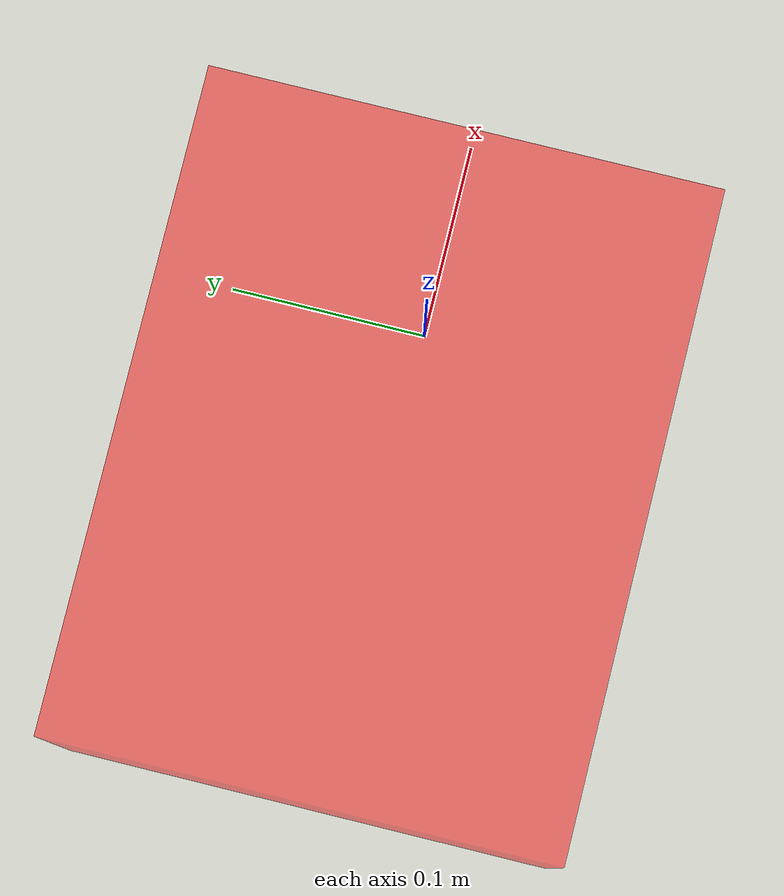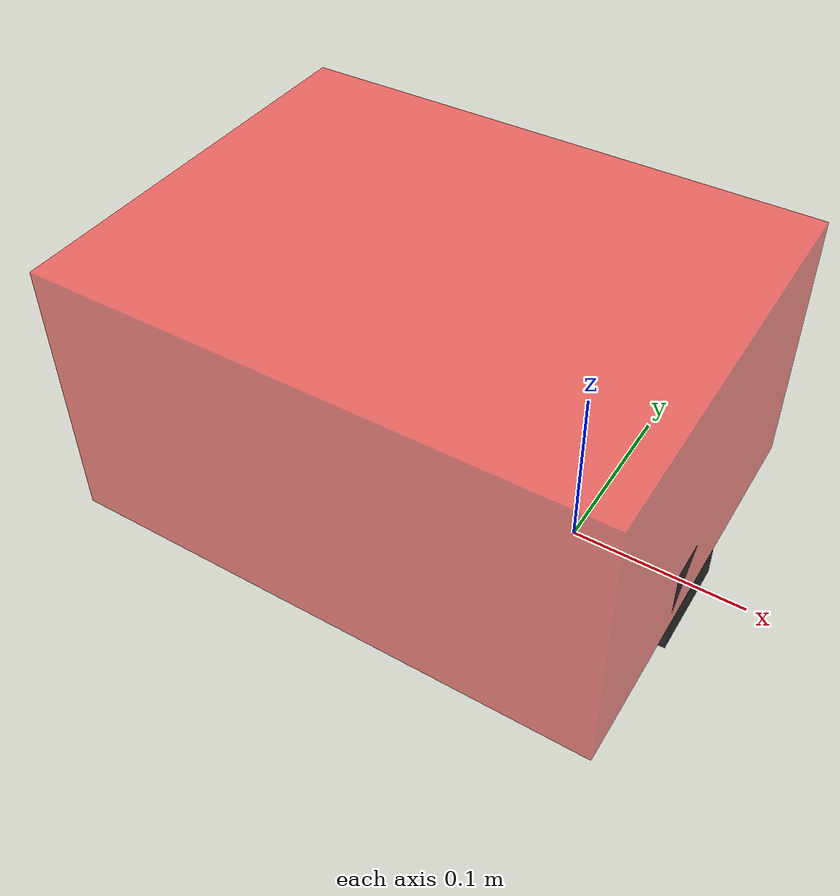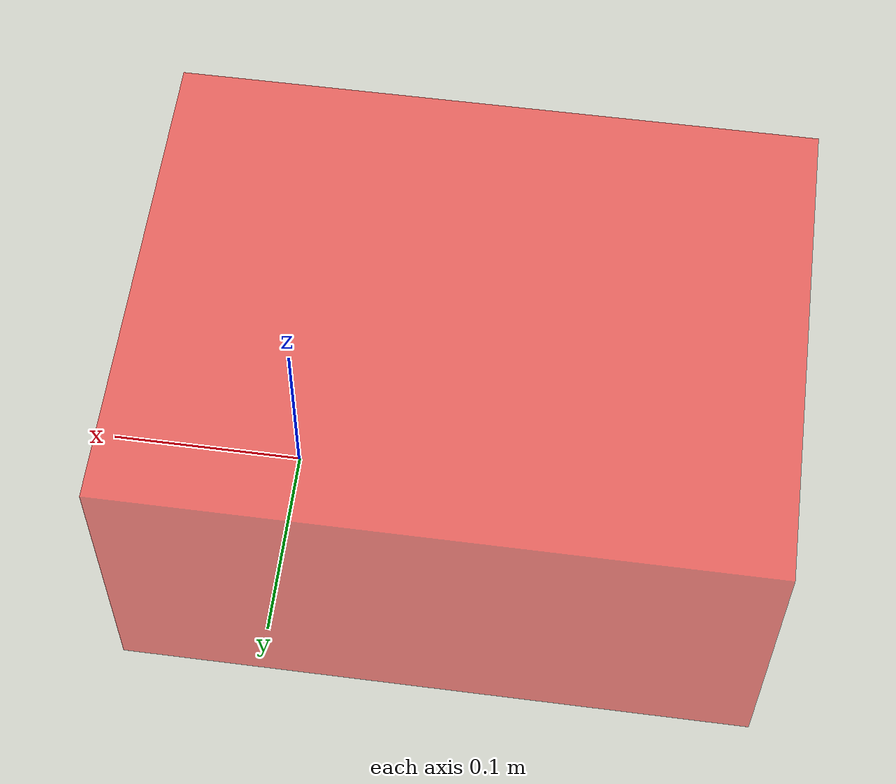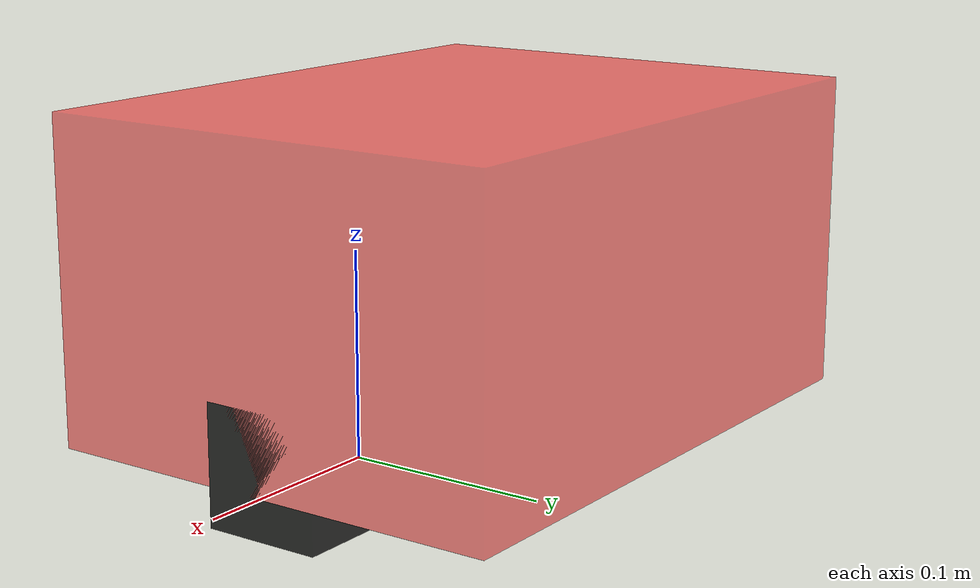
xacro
<?xml version="1.0"?>
<robot xmlns:xacro="http://www.ros.org/wiki/xacro" name="minibot_light_01">
  <xacro:property name="body_d" value="0.315" />
  <xacro:property name="body_w" value="0.2423" />
  <xacro:property name="body_h" value="0.162" />
  <xacro:property name="body_offset_x" value="${0.07-body_d/2}" />
  <xacro:property name="body_offset_z" value="${body_h/2}" />

  <link name="base_link">
    <collision>
      <origin rpy="0 0 0" xyz="${body_offset_x} 0 ${body_offset_z}"/>
      <geometry>
        <box size="${body_d} ${body_w} ${body_h}"/>
      </geometry>
    </collision>
    <visual>
      <origin rpy="0 0 0" xyz="${body_offset_x} 0 ${body_offset_z}"/>
      <geometry>
        <box size="${body_d} ${body_w} ${body_h}"/>
      </geometry>
      <material name="vehicle_mat">
        <color rgba="1.0 0.0 0.0 0.5"/>
      </material>
    </visual>
  </link>

  <xacro:property name="laser_d" value="0.06" />
  <xacro:property name="laser_w" value="0.06" />
  <xacro:property name="laser_h" value="0.06" />
  <xacro:property name="laser_x" value="0.04" />
  <xacro:property name="laser_z" value="0.01" />

  <joint name="laser_joint" type="fixed">
    <origin xyz="${laser_x} 0 ${laser_z}" rpy="${radians(180)} 0 0"/>
    <parent link="base_link"/>
    <child link="base_laser_link"/>
  </joint>

  <link name="base_laser_link">
    <collision>
      <origin rpy="0 0 0" xyz="0 0 0"/>
      <geometry>
        <box size="${laser_d} ${laser_w} ${laser_h}"/>
      </geometry>
    </collision>
    <visual>
      <origin rpy="0 0 0" xyz="0 0 0"/>
      <geometry>
        <box size="${laser_d} ${laser_w} ${laser_h}"/>
      </geometry>
      <material name="laser_mat">
        <color rgba="0.0 0.0 0.0 0.8"/>
      </material>
    </visual>
  </link>
</robot>
